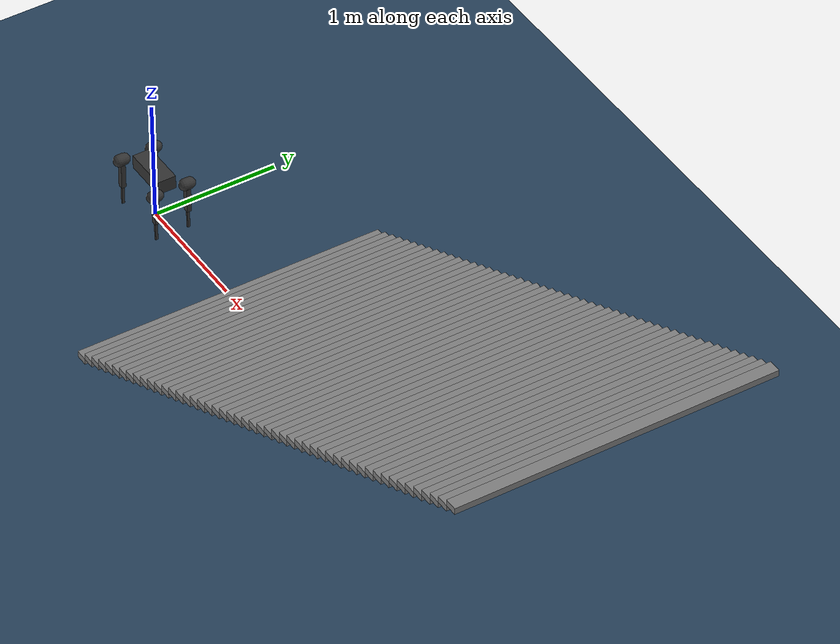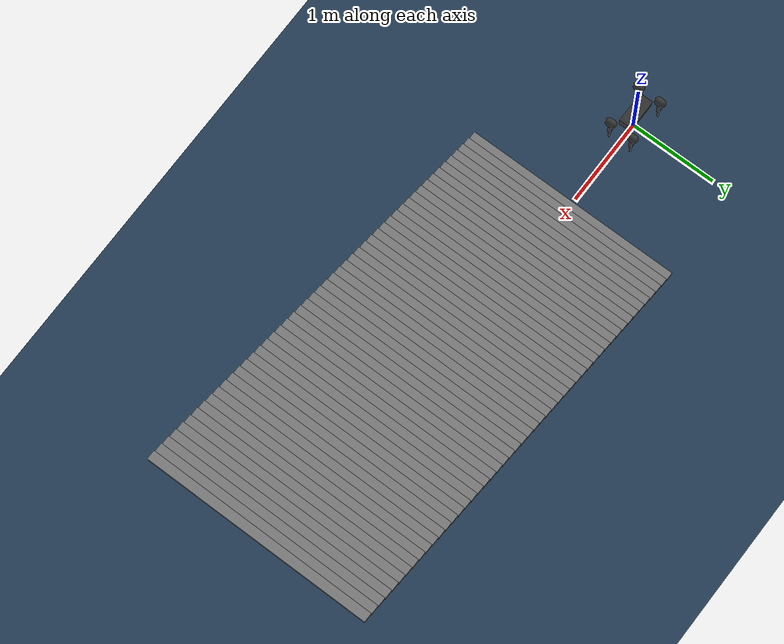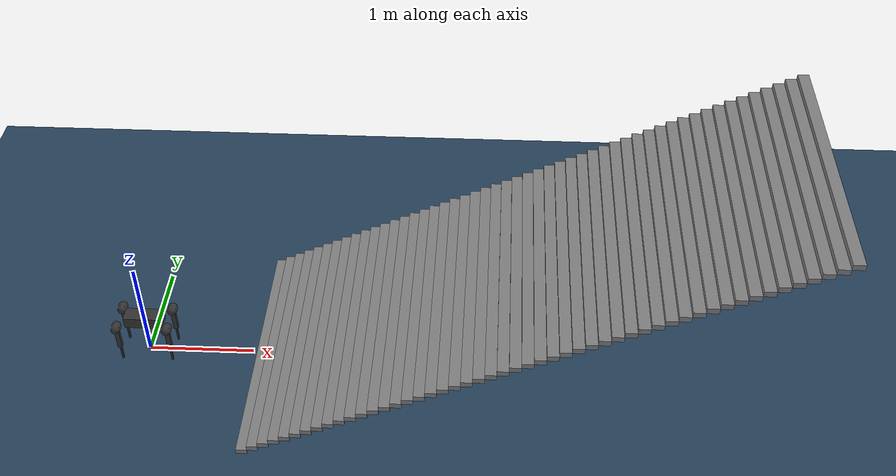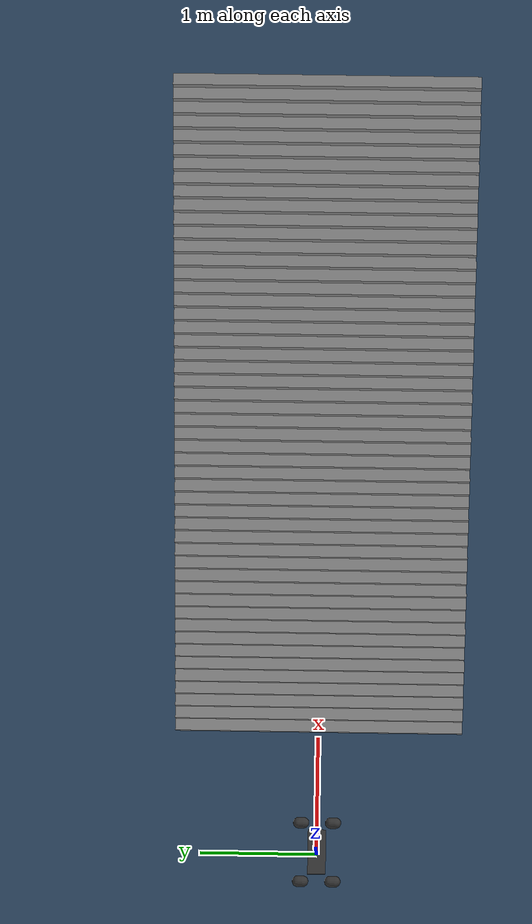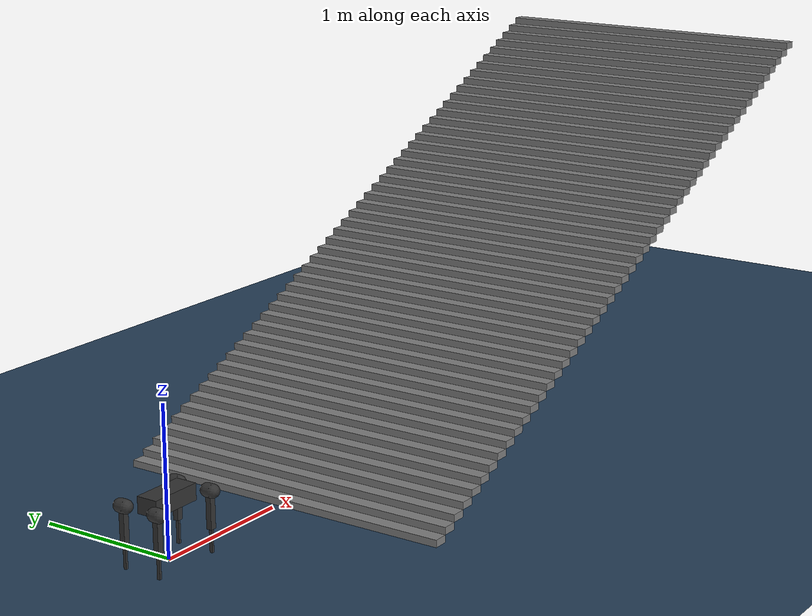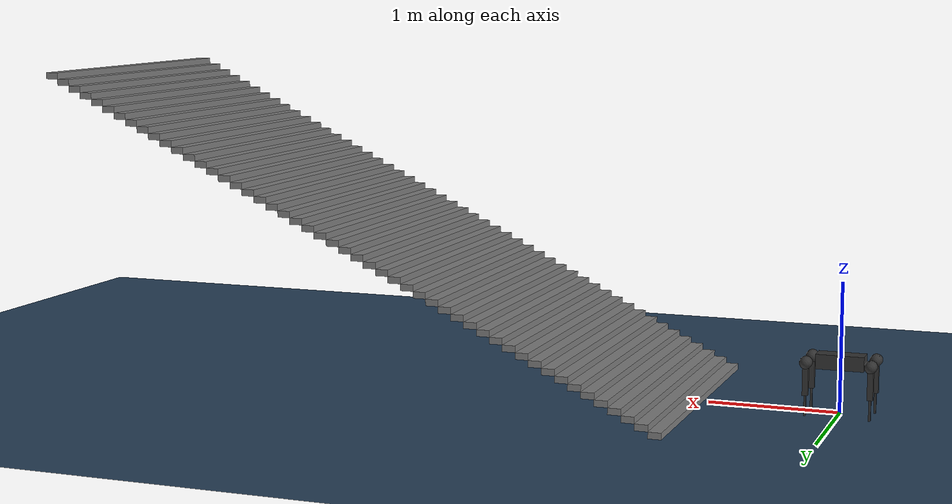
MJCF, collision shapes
<mujoco model="aliengo scene">
    <include file="aliengo.xml"/>

    <statistic center="0 0 0.1" extent="0.8"/>

    <visual>
        <headlight diffuse="0.6 0.6 0.6" ambient="0.3 0.3 0.3" specular="0 0 0"/>
        <rgba haze="0.15 0.25 0.35 1"/>
        <global azimuth="-130" elevation="-20"/>
    </visual>

    <asset>
        <texture type="skybox" builtin="gradient" rgb1="0.3 0.5 0.7" rgb2="0 0 0" width="512" height="3072"/>
        <texture type="2d" name="groundplane" builtin="checker" mark="edge" rgb1="0.2 0.3 0.4" rgb2="0.1 0.2 0.3"
                 markrgb="0.8 0.8 0.8" width="300" height="300"/>
        <material name="groundplane" texture="groundplane" texuniform="true" texrepeat="5 5" reflectance="0.2"/>
    </asset>

    <worldbody>
        <light pos="0 0 1.5" dir="0 0 -1" directional="true"/>
        <geom name="floor" size="0 0 0.05" type="plane" material="groundplane"/>
        <geom pos="1.1 0.0 0.025" type="box" size="0.05 1.25 0.025" quat="1.0 0.0 0.0 0.0"/>
        <geom pos="1.2 0.0 0.07500000000000001" type="box" size="0.05 1.25 0.025" quat="1.0 0.0 0.0 0.0"/>
        <geom pos="1.3 0.0 0.125" type="box" size="0.05 1.25 0.025" quat="1.0 0.0 0.0 0.0"/>
        <geom pos="1.4 0.0 0.175" type="box" size="0.05 1.25 0.025" quat="1.0 0.0 0.0 0.0"/>
        <geom pos="1.5 0.0 0.22499999999999998" type="box" size="0.05 1.25 0.025" quat="1.0 0.0 0.0 0.0"/>
        <geom pos="1.6 0.0 0.27499999999999997" type="box" size="0.05 1.25 0.025" quat="1.0 0.0 0.0 0.0"/>
        <geom pos="1.7 0.0 0.32499999999999996" type="box" size="0.05 1.25 0.025" quat="1.0 0.0 0.0 0.0"/>
        <geom pos="1.7999999999999998 0.0 0.37499999999999994" type="box" size="0.05 1.25 0.025"
              quat="1.0 0.0 0.0 0.0"/>
        <geom pos="1.9 0.0 0.42499999999999993" type="box" size="0.05 1.25 0.025" quat="1.0 0.0 0.0 0.0"/>
        <geom pos="2.0 0.0 0.4749999999999999" type="box" size="0.05 1.25 0.025" quat="1.0 0.0 0.0 0.0"/>
        <geom pos="2.0999999999999996 0.0 0.5249999999999999" type="box" size="0.05 1.25 0.025" quat="1.0 0.0 0.0 0.0"/>
        <geom pos="2.2 0.0 0.575" type="box" size="0.05 1.25 0.025" quat="1.0 0.0 0.0 0.0"/>
        <geom pos="2.3 0.0 0.625" type="box" size="0.05 1.25 0.025" quat="1.0 0.0 0.0 0.0"/>
        <geom pos="2.4000000000000004 0.0 0.675" type="box" size="0.05 1.25 0.025" quat="1.0 0.0 0.0 0.0"/>
        <geom pos="2.5 0.0 0.7250000000000001" type="box" size="0.05 1.25 0.025" quat="1.0 0.0 0.0 0.0"/>
        <geom pos="2.6000000000000005 0.0 0.7750000000000001" type="box" size="0.05 1.25 0.025" quat="1.0 0.0 0.0 0.0"/>
        <geom pos="2.7 0.0 0.8250000000000002" type="box" size="0.05 1.25 0.025" quat="1.0 0.0 0.0 0.0"/>
        <geom pos="2.8000000000000007 0.0 0.8750000000000002" type="box" size="0.05 1.25 0.025" quat="1.0 0.0 0.0 0.0"/>
        <geom pos="2.9000000000000004 0.0 0.9250000000000003" type="box" size="0.05 1.25 0.025" quat="1.0 0.0 0.0 0.0"/>
        <geom pos="3.0000000000000004 0.0 0.9750000000000003" type="box" size="0.05 1.25 0.025" quat="1.0 0.0 0.0 0.0"/>
        <geom pos="3.1000000000000005 0.0 1.0250000000000004" type="box" size="0.05 1.25 0.025" quat="1.0 0.0 0.0 0.0"/>
        <geom pos="3.2000000000000006 0.0 1.0750000000000004" type="box" size="0.05 1.25 0.025" quat="1.0 0.0 0.0 0.0"/>
        <geom pos="3.3000000000000007 0.0 1.1250000000000004" type="box" size="0.05 1.25 0.025" quat="1.0 0.0 0.0 0.0"/>
        <geom pos="3.400000000000001 0.0 1.1750000000000005" type="box" size="0.05 1.25 0.025" quat="1.0 0.0 0.0 0.0"/>
        <geom pos="3.500000000000001 0.0 1.2250000000000005" type="box" size="0.05 1.25 0.025" quat="1.0 0.0 0.0 0.0"/>
        <geom pos="3.600000000000001 0.0 1.2750000000000006" type="box" size="0.05 1.25 0.025" quat="1.0 0.0 0.0 0.0"/>
        <geom pos="3.700000000000001 0.0 1.3250000000000006" type="box" size="0.05 1.25 0.025" quat="1.0 0.0 0.0 0.0"/>
        <geom pos="3.800000000000001 0.0 1.3750000000000007" type="box" size="0.05 1.25 0.025" quat="1.0 0.0 0.0 0.0"/>
        <geom pos="3.9000000000000012 0.0 1.4250000000000007" type="box" size="0.05 1.25 0.025" quat="1.0 0.0 0.0 0.0"/>
        <geom pos="4.000000000000002 0.0 1.4750000000000008" type="box" size="0.05 1.25 0.025" quat="1.0 0.0 0.0 0.0"/>
        <geom pos="4.100000000000001 0.0 1.5250000000000008" type="box" size="0.05 1.25 0.025" quat="1.0 0.0 0.0 0.0"/>
        <geom pos="4.200000000000001 0.0 1.5750000000000008" type="box" size="0.05 1.25 0.025" quat="1.0 0.0 0.0 0.0"/>
        <geom pos="4.300000000000002 0.0 1.6250000000000009" type="box" size="0.05 1.25 0.025" quat="1.0 0.0 0.0 0.0"/>
        <geom pos="4.400000000000002 0.0 1.675000000000001" type="box" size="0.05 1.25 0.025" quat="1.0 0.0 0.0 0.0"/>
        <geom pos="4.500000000000002 0.0 1.725000000000001" type="box" size="0.05 1.25 0.025" quat="1.0 0.0 0.0 0.0"/>
        <geom pos="4.600000000000001 0.0 1.775000000000001" type="box" size="0.05 1.25 0.025" quat="1.0 0.0 0.0 0.0"/>
        <geom pos="4.700000000000002 0.0 1.825000000000001" type="box" size="0.05 1.25 0.025" quat="1.0 0.0 0.0 0.0"/>
        <geom pos="4.8000000000000025 0.0 1.875000000000001" type="box" size="0.05 1.25 0.025" quat="1.0 0.0 0.0 0.0"/>
        <geom pos="4.900000000000002 0.0 1.9250000000000012" type="box" size="0.05 1.25 0.025" quat="1.0 0.0 0.0 0.0"/>
        <geom pos="5.000000000000002 0.0 1.9750000000000012" type="box" size="0.05 1.25 0.025" quat="1.0 0.0 0.0 0.0"/>
        <geom pos="5.100000000000001 0.0 2.0250000000000012" type="box" size="0.05 1.25 0.025" quat="1.0 0.0 0.0 0.0"/>
        <geom pos="5.200000000000001 0.0 2.075000000000001" type="box" size="0.05 1.25 0.025" quat="1.0 0.0 0.0 0.0"/>
        <geom pos="5.300000000000001 0.0 2.125000000000001" type="box" size="0.05 1.25 0.025" quat="1.0 0.0 0.0 0.0"/>
        <geom pos="5.4 0.0 2.1750000000000007" type="box" size="0.05 1.25 0.025" quat="1.0 0.0 0.0 0.0"/>
        <geom pos="5.5 0.0 2.2250000000000005" type="box" size="0.05 1.25 0.025" quat="1.0 0.0 0.0 0.0"/>
        <geom pos="5.6 0.0 2.2750000000000004" type="box" size="0.05 1.25 0.025" quat="1.0 0.0 0.0 0.0"/>
        <geom pos="5.699999999999999 0.0 2.325" type="box" size="0.05 1.25 0.025" quat="1.0 0.0 0.0 0.0"/>
        <geom pos="5.799999999999999 0.0 2.375" type="box" size="0.05 1.25 0.025" quat="1.0 0.0 0.0 0.0"/>
        <geom pos="5.899999999999999 0.0 2.425" type="box" size="0.05 1.25 0.025" quat="1.0 0.0 0.0 0.0"/>
        <geom pos="5.999999999999998 0.0 2.4749999999999996" type="box" size="0.05 1.25 0.025" quat="1.0 0.0 0.0 0.0"/>
    </worldbody>
</mujoco>

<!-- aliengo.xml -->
<mujoco model="aliengo_description">
    <compiler angle="radian" autolimits="true"/>

    <default>
        <default class="visual">
            <geom type="mesh" contype="0" conaffinity="0" group="2"/>
        </default>
        <default class="collision">
            <geom group="3" rgba="0.2 0.2 0.2 0.5"/>
        </default>

        <default class="hip">
            <motor ctrlrange="-35.278 35.278"/>
        </default>
        <default class="thigh">
            <motor ctrlrange="-35.278 35.278"/>
        </default>
        <default class="calf">
            <motor ctrlrange="-44.4 44.4"/>
        </default>

    </default>

    <asset>
        <mesh name="base" file="assets/base.stl"/>
        <mesh name="hip" file="assets/hip.stl"/>
        <mesh name="thigh_mirror" file="assets/thigh_mirror.stl"/>
        <mesh name="calf" file="assets/calf.stl"/>
        <mesh name="thigh" file="assets/thigh.stl"/>
    </asset>

    <worldbody>

        <body name="base" pos="0 0 0.4">
            <inertial pos="0.00846406 0.00404455 -0.000762916" quat="-3.12625e-05 0.708321 0.00247254 0.705886"
                      mass="13.042" diaginertia="0.174706 0.161175 0.033357"/>
            <freejoint/>

            <!-- base visual mesh and collision -->
            <geom type="mesh" class="visual" rgba="0.2 0.2 0.2 1" mesh="base"/>
            <geom type="box" class="collision" size="0.18 0.075 0.056"/>

            <!-- modify this to add payload -->

            <!-- imu and camera -->
            <site name="imu" pos="0 0 0"/>
            <camera name="robotcam" pos="0.31 -0.005 0.00292751" quat="0.4 0.4 -0.4 -0.4"/>

            <!-- FL leg -->
            <body name="FL_hip" pos="0.2399 0.051 0">
                <inertial pos="-0.022191 0.015144 -1.5e-05" quat="-0.0135493 0.706835 0.0117635 0.707151" mass="1.993"
                          diaginertia="0.00558695 0.00491009 0.00290132"/>
                <joint name="FL_hip_joint" pos="0 0 0" axis="1 0 0" limited="true" range="-1.22173 1.22173" armature="0.0062" frictionloss="0.4168" damping="0.1744"/>

                <!-- FL_hip visual mesh and collision -->
                <geom type="mesh" class="visual" rgba="0.2 0.2 0.2 1" mesh="hip"/>
                <geom type="capsule" class="collision" size="0.046 0.0209" pos="0 0.083 0"
                      quat="0.707107 0.707107 0 0"/>

                <body name="FL_thigh" pos="0 0.083 0">
                    <inertial pos="-0.005607 -0.003877 -0.048199" quat="0.717987 -0.031246 -0.0335669 0.694544"
                              mass="0.639" diaginertia="0.0058474 0.00571186 0.000324584"/>
                    <joint name="FL_thigh_joint" pos="0 0 0" axis="0 1 0" armature="0.0172" frictionloss="0.3451" damping="0.1396"/>

                    <!-- FL_thigh visual mesh and collision -->
                    <geom type="mesh" class="visual" rgba="0.2 0.2 0.2 1" mesh="thigh"/>
                    <geom type="box" class="collision" size="0.125 0.0187 0.0215" pos="0 0 -0.125"
                          quat="0.707107 0 0.707107 0"/>

                    <body name="FL_calf" pos="0 0 -0.25">
                        <inertial pos="0.00215606 4.88427e-05 -0.166671" quat="0.707462 0.00517582 0.00535172 0.706712"
                                  mass="0.267" diaginertia="0.00690975 0.00689712 5.4885e-05"/>
                        <joint name="FL_calf_joint" pos="0 0 0" axis="0 1 0" limited="true" range="-2.77507 -0.645772" armature="0.0269" frictionloss="0.4909" damping="0.1588"/>

                        <!-- FL_calf visual mesh and collision -->
                        <geom type="mesh" class="visual" rgba="0 0 0 1" mesh="calf"/>
                        <geom type="box" class="collision" size="0.125 0.0104 0.008" pos="0 0 -0.125"
                              quat="0.707107 0 0.707107 0"/>

                        <!-- FL_foot only collision -->
                        <!--geom name="FL" class="collision" size="0.0265" pos="0 0 -0.25"/-->

                        <body name="FL_foot" pos="0 0 -0.25">
                            <!-- FL_foot only collision -->
                            <geom name="FL" class="collision" size="0.0265" mass="0"/>
                        </body>

                    </body>
                </body>
            </body>

            <!-- FR leg -->
            <body name="FR_hip" pos="0.2399 -0.051 0">
                <inertial pos="-0.022191 -0.015144 -1.5e-05" quat="0.0135493 0.706835 -0.0117635 0.707151" mass="1.993"
                          diaginertia="0.00558695 0.00491009 0.00290132"/>
                <joint name="FR_hip_joint" pos="0 0 0" axis="1 0 0" limited="true" range="-1.22173 1.22173" armature="0.0096" frictionloss="0.4756" damping="0.1"/>

                <!-- FR_hip visual mesh and collision -->
                <geom type="mesh" mesh="hip" class="visual" quat="0 1 0 0" rgba="0.2 0.2 0.2 1"/>
                <geom type="capsule" class="collision" size="0.046 0.0209" pos="0 -0.083 0"
                      quat="0.707107 0.707107 0 0"/>

                <body name="FR_thigh" pos="0 -0.083 0">
                    <inertial pos="-0.005607 0.003877 -0.048199" quat="0.694544 -0.0335669 -0.031246 0.717987"
                              mass="0.639" diaginertia="0.0058474 0.00571186 0.000324584"/>
                    <joint name="FR_thigh_joint" pos="0 0 0" axis="0 1 0" armature="0.0126" frictionloss="0.2558" damping="0.2542"/>

                    <!-- FR_thigh visual mesh and collision -->
                    <geom type="mesh" mesh="thigh_mirror" class="visual" rgba="0.2 0.2 0.2 1"/>
                    <geom type="box" class="collision" size="0.125 0.0187 0.0215" pos="0 0 -0.125"
                          quat="0.707107 0 0.707107 0"/>

                    <body name="FR_calf" pos="0 0 -0.25">
                        <inertial pos="0.00215606 4.88427e-05 -0.166671" quat="0.707462 0.00517582 0.00535172 0.706712"
                                  mass="0.267" diaginertia="0.00690975 0.00689712 5.4885e-05"/>
                        <joint name="FR_calf_joint" pos="0 0 0" axis="0 1 0" limited="true" range="-2.77507 -0.645772" armature="0.0170" frictionloss="0.1965" damping="0.3150"/>

                        <!-- FR_calf visual mesh and collision -->
                        <geom type="mesh" mesh="calf" class="visual" rgba="0 0 0 1"/>
                        <geom type="box" class="collision" size="0.125 0.0104 0.008" pos="0 0 -0.125"
                              quat="0.707107 0 0.707107 0"/>

                        <!-- FR_foot only collision -->
                        <!--geom name="FR" class="collision" size="0.0265" pos="0 0 -0.25"/-->

                        <body name="FR_foot" pos="0 0 -0.25">
                            <!-- FR_foot only collision -->
                            <geom name="FR" class="collision" size="0.0265" mass="0"/>
                        </body>

                    </body>
                </body>
            </body>

            <!-- RL leg -->
            <body name="RL_hip" pos="-0.2399 0.051 0">
                <inertial pos="0.022191 0.015144 -1.5e-05" quat="0.0117635 0.707151 -0.0135493 0.706835" mass="1.993"
                          diaginertia="0.00558695 0.00491009 0.00290132"/>
                <joint name="RL_hip_joint" pos="0 0 0" axis="1 0 0" limited="true" range="-1.22173 1.22173" armature="0.0097" frictionloss="0.3773" damping="0.1832"/>

                <!-- RL_hip visual mesh and collision -->
                <geom type="mesh" class="visual" quat="0 0 1 0" rgba="0.2 0.2 0.2 1" mesh="hip"/>
                <geom type="capsule" class="collision" size="0.046 0.0209" pos="0 0.083 0"
                      quat="0.707107 0.707107 0 0"/>

                <body name="RL_thigh" pos="0 0.083 0">
                    <inertial pos="-0.005607 -0.003877 -0.048199" quat="0.717987 -0.031246 -0.0335669 0.694544"
                              mass="0.639" diaginertia="0.0058474 0.00571186 0.000324584"/>
                    <joint name="RL_thigh_joint" pos="0 0 0" axis="0 1 0" armature="0.0160" frictionloss="0.2892" damping="0.1884"/>

                    <!-- RL_thigh visual mesh and collision -->
                    <geom type="mesh" class="visual" rgba="0.2 0.2 0.2 1" mesh="thigh"/>
                    <geom type="box" class="collision" size="0.125 0.0187 0.0215" pos="0 0 -0.125"
                          quat="0.707107 0 0.707107 0"/>

                    <body name="RL_calf" pos="0 0 -0.25">
                        <inertial pos="0.00215606 4.88427e-05 -0.166671" quat="0.707462 0.00517582 0.00535172 0.706712"
                                  mass="0.267" diaginertia="0.00690975 0.00689712 5.4885e-05"/>
                        <joint name="RL_calf_joint" pos="0 0 0" axis="0 1 0" limited="true" range="-2.77507 -0.645772" armature="0.0233" frictionloss="0.3549" damping="0.2531"/>

                        <!-- RL_calf visual mesh and collision -->
                        <geom type="mesh" class="visual" rgba="0 0 0 1" mesh="calf"/>
                        <geom type="box" class="collision" size="0.125 0.0104 0.008" pos="0 0 -0.125"
                              quat="0.707107 0 0.707107 0"/>

                        <!-- RL_foot only collision -->
                        <!--geom name="RL" class="collision" size="0.0265" pos="0 0 -0.25"/-->

                        <body name="RL_foot" pos="0 0 -0.25">
                            <!-- RL_foot only collision -->
                            <geom name="RL" class="collision" size="0.0265" mass="0"/>
                        </body>

                    </body>
                </body>
            </body>

            <!-- RR leg -->
            <body name="RR_hip" pos="-0.2399 -0.051 0">
                <inertial pos="0.022191 -0.015144 -1.5e-05" quat="-0.0117635 0.707151 0.0135493 0.706835" mass="1.993"
                          diaginertia="0.00558695 0.00491009 0.00290132"/>
                <joint name="RR_hip_joint" pos="0 0 0" axis="1 0 0" limited="true" range="-1.22173 1.22173" armature="0.0119" frictionloss="0.6511" damping="0.2535"/>

                <!-- RR_hip visual mesh and collision -->
                <geom type="mesh" class="visual" quat="0 0 0 -1" rgba="0.2 0.2 0.2 1" mesh="hip"/>
                <geom type="capsule" class="collision" size="0.046 0.0209" pos="0 -0.083 0"
                      quat="0.707107 0.707107 0 0"/>

                <body name="RR_thigh" pos="0 -0.083 0">
                    <inertial pos="-0.005607 0.003877 -0.048199" quat="0.694544 -0.0335669 -0.031246 0.717987"
                              mass="0.639" diaginertia="0.0058474 0.00571186 0.000324584"/>
                    <joint name="RR_thigh_joint" pos="0 0 0" axis="0 1 0" armature="0.0150" frictionloss="0.2998" damping="0.2233"/>

                    <!-- RR_thigh visual mesh and collision -->
                    <geom type="mesh" class="visual" rgba="0.2 0.2 0.2 1" mesh="thigh_mirror"/>
                    <geom type="box" class="collision" size="0.125 0.0187 0.0215" pos="0 0 -0.125"
                          quat="0.707107 0 0.707107 0"/>

                    <body name="RR_calf" pos="0 0 -0.25">
                        <inertial pos="0.00215606 4.88427e-05 -0.166671" quat="0.707462 0.00517582 0.00535172 0.706712"
                                  mass="0.267" diaginertia="0.00690975 0.00689712 5.4885e-05"/>
                        <joint name="RR_calf_joint" pos="0 0 0" axis="0 1 0" limited="true" range="-2.77507 -0.645772" armature="0.0249" frictionloss="0.4363" damping="0.3365"/>

                        <!-- RR_calf visual mesh and collision -->
                        <geom type="mesh" class="visual" rgba="0 0 0 1" mesh="calf"/>
                        <geom type="box" class="collision" size="0.125 0.0104 0.008" pos="0 0 -0.125"
                              quat="0.707107 0 0.707107 0"/>

                        <!-- RR_foot only collision -->
                        <!--geom name="RR" class="collision" size="0.0265" pos="0 0 -0.25"/-->

                        <body name="RR_foot" pos="0 0 -0.25">
                            <!-- RR_foot only collision -->
                            <geom name="RR" class="collision" size="0.0265" mass="0"/>
                        </body>

                    </body>
                </body>
            </body>
        </body>
    </worldbody>

    <actuator>
        <motor name="FL_hip"   class="hip"    gear="1" joint="FL_hip_joint"/>
        <motor name="FL_thigh" class="thigh"  gear="1" joint="FL_thigh_joint"/>
        <motor name="FL_calf"  class="calf"   gear="1" joint="FL_calf_joint"/>
        <motor name="FR_hip"   class="hip"    gear="1" joint="FR_hip_joint"/>
        <motor name="FR_thigh" class="thigh"  gear="1" joint="FR_thigh_joint"/>
        <motor name="FR_calf"  class="calf"   gear="1" joint="FR_calf_joint"/>
        <motor name="RL_hip"   class="hip"    gear="1" joint="RL_hip_joint"/>
        <motor name="RL_thigh" class="thigh"  gear="1" joint="RL_thigh_joint"/>
        <motor name="RL_calf"  class="calf"   gear="1" joint="RL_calf_joint"/>
        <motor name="RR_hip"   class="hip"    gear="1" joint="RR_hip_joint"/>
        <motor name="RR_thigh" class="thigh"  gear="1" joint="RR_thigh_joint"/>
        <motor name="RR_calf"  class="calf"   gear="1" joint="RR_calf_joint" />
    </actuator>

    <sensor>
        <accelerometer name="imu_acc" site="imu"/>
        <gyro name="imu_gyro" site="imu"/>
        <framepos name="imu_pos" objtype="site" objname="imu"/>
        <framequat name="imu_quat" objtype="site" objname="imu"/>

        <jointpos name="FL_hip_joint_pos" joint="FL_hip_joint"/>
        <jointpos name="FL_thigh_joint_pos" joint="FL_thigh_joint"/>
        <jointpos name="FL_calf_joint_pos" joint="FL_calf_joint"/>
        <jointpos name="FR_hip_joint_pos" joint="FR_hip_joint"/>
        <jointpos name="FR_thigh_joint_pos" joint="FR_thigh_joint"/>
        <jointpos name="FR_calf_joint_pos" joint="FR_calf_joint"/>
        <jointpos name="RL_hip_joint_pos" joint="RL_hip_joint"/>
        <jointpos name="RL_thigh_joint_pos" joint="RL_thigh_joint"/>
        <jointpos name="RL_calf_joint_pos" joint="RL_calf_joint"/>
        <jointpos name="RR_hip_joint_pos" joint="RR_hip_joint"/>
        <jointpos name="RR_thigh_joint_pos" joint="RR_thigh_joint"/>
        <jointpos name="RR_calf_joint_pos" joint="RR_calf_joint"/>
    </sensor>

    <keyframe>
        <key name="home" qpos="0 0 0.35 1 0 0 0 0 0.9 -1.8 0 0.9 -1.8 0 0.9 -1.8 0 0.9 -1.8"/>
        <key name="down" qpos="0 0 0.05 1 0 0 0 0.0 1.21 -2.794 0.0 1.21 -2.794 0.0 1.21 -2.794 0.0 1.21 -2.794"/>
    </keyframe>
</mujoco>
